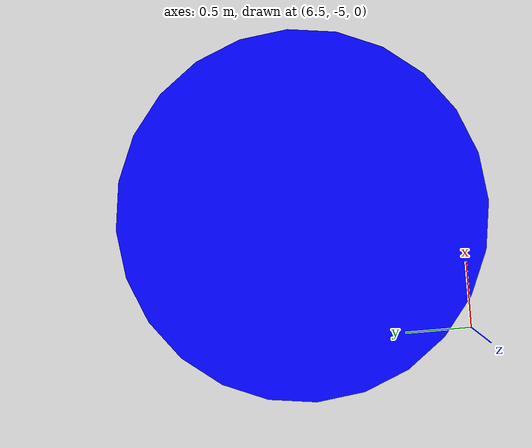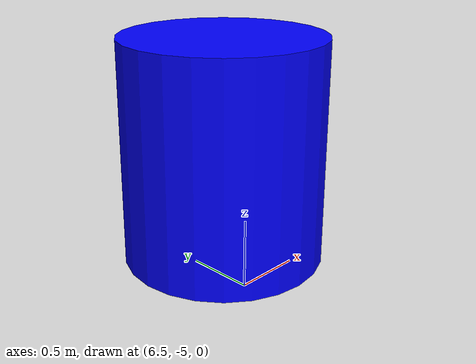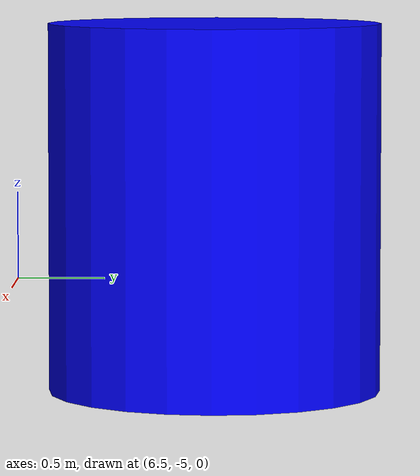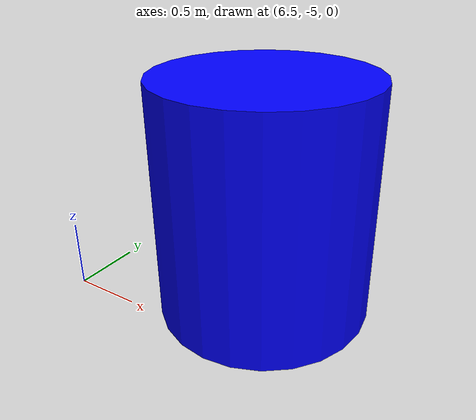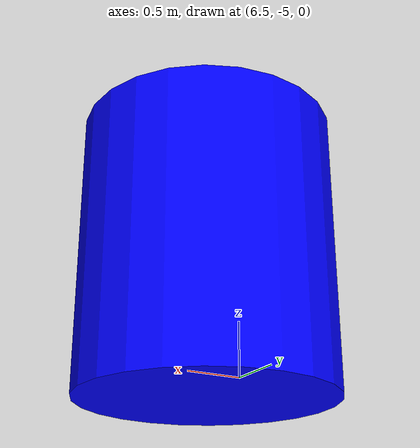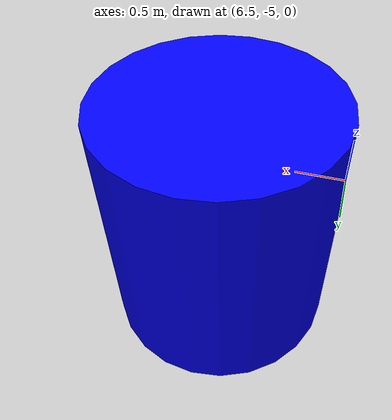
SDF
<sdf version='1.6'>
    <model name='cyl_12'>
      <pose>7.45 -3.85 0.5 0 -0 0</pose>
      <link name='cylinder_link'>
        <inertial>
          <inertia>
            <ixx>0.14580000000000001</ixx>
            <ixy>0</ixy>
            <ixz>0</ixz>
            <iyy>0.14580000000000001</iyy>
            <iyz>0</iyz>
            <izz>0.125</izz>
          </inertia>
          <mass>1</mass>
          <pose>0 0 0 0 -0 0</pose>
        </inertial>
        <collision name='cylinder_collision'>
          <geometry>
            <cylinder>
              <radius>0.91</radius>
              <length>2.02</length>
            </cylinder>
          </geometry>
          <surface>
            <friction>
              <ode/>
            </friction>
            <bounce/>
            <contact/>
          </surface>
        </collision>
        <visual name='cylinder_visual'>
          <geometry>
            <cylinder>
              <radius>0.91</radius>
              <length>2.02</length>
            </cylinder>
          </geometry>
          <material>
            <ambient>0 0 1 1</ambient>
            <diffuse>0 0 1 1</diffuse>
            <specular>0 0 1 1</specular>
          </material>
        </visual>
        <pose>0 0 0 0 -0 0</pose>
        <enable_wind>false</enable_wind>
      </link>
      <static>false</static>
      <self_collide>false</self_collide>
    </model>
    </sdf>
